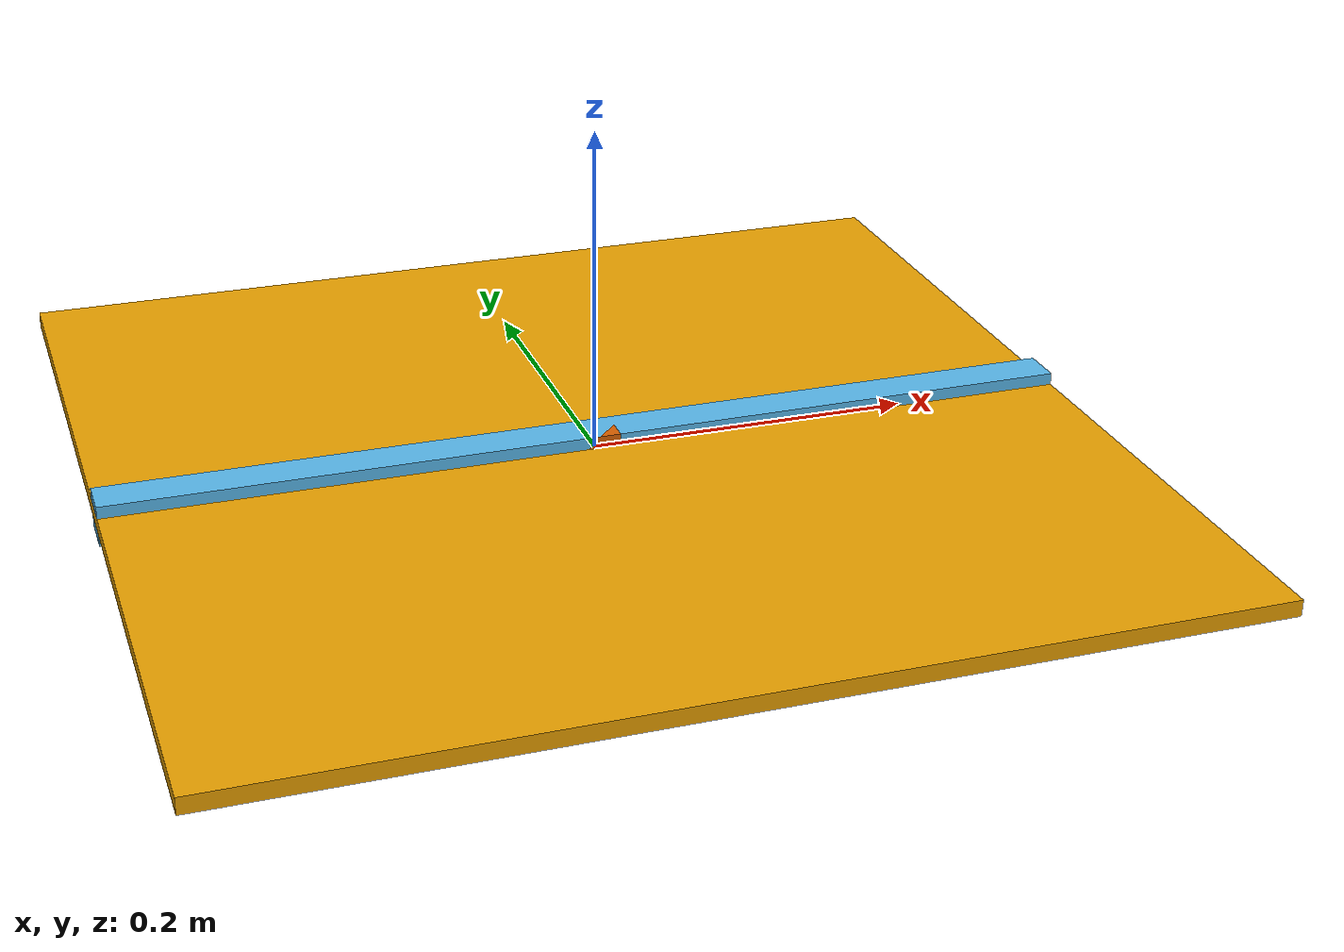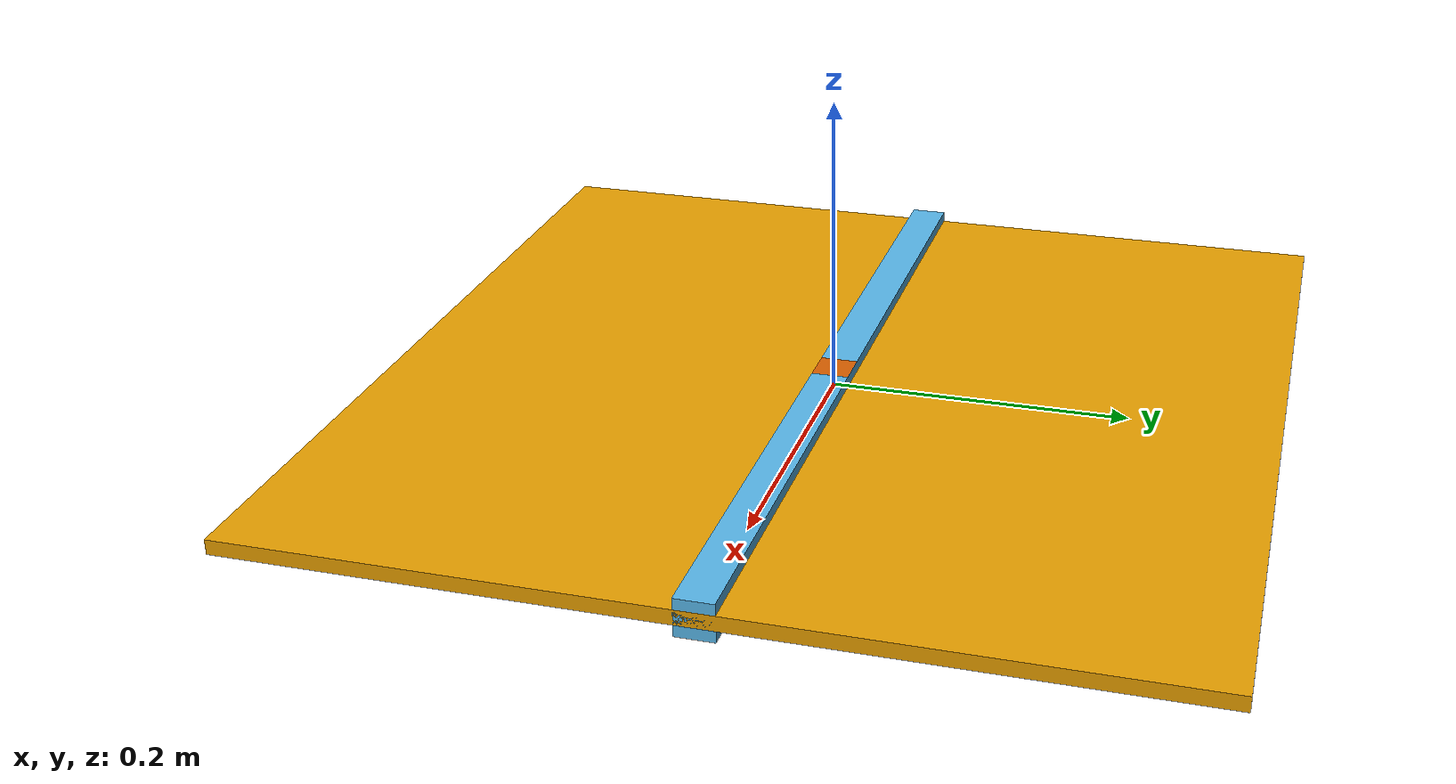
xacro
<?xml version="1.0"?>
<robot xmlns:xacro="http://www.ros.org/wiki/xacro" name="nu_urc_rover">

  <xacro:property name="robot_name" value="nu_urc_rover" />
  <xacro:property name="robot_base_width" value="0.6" />
  <xacro:property name="robot_base_length" value="0.6" />
  <xacro:property name="sheet_metal_thickness" value="0.01" />

  <!-- Cross sectional length of the aluminum bar -->
  <xacro:property name="aluminum_cs_length" value="0.025" />
  <xacro:property name="cube_length" value="0.025" />
  <xacro:property name="aluminum_bar_length" value="0.6" />

  <!--                              BEGIN MACRO DEFINITION                              -->

  <!-- Perforated sheet metal -->
  <xacro:macro name="sheet_metal" params="name width length depth">
    <link name="${name}">
      <visual>
        <geometry>
          <box size="${width} ${length} ${depth}" />
          <origin rpy="0.0 0.0 0.0" xyz="0.0 0.0 0.0" />
        </geometry>
      </visual>
    </link>
  </xacro:macro>

  <!-- Extruded aluminum link with variable size -->
  <xacro:macro name="ext_aluminum" params="name bar_length cs_length">
    <link name="${name}_chassis">
      <visual>
        <geometry>
          <box size="${bar_length} ${cs_length} ${cs_length}" />
        </geometry>
        <origin rpy="0.0 0.0 0.0" xyz="0.0 0.0 0.0" />
      </visual>
    </link>
  </xacro:macro>

  <!-- Cube connection pieces between extruded aluminum links -->
  <xacro:macro name="cube_connector" params="name length">
    <link name="${name}">
      <visual>
        <geometry>
          <box size="${length} ${length} ${length}" />
        </geometry>
        <origin rpy="0.0 0.0 0.0" xyz="0.0 0.0 0.0" />
      </visual>
    </link>
  </xacro:macro>

  <!-- Chassis joint generation macro -->
  <xacro:macro name="chassis_generation" params="parent_base child_base">
    <joint name="${parent_base}_${child_base}_connector" type="continuous">
      <parent link="${parent_base}" />
      <child link="${child_base}" />
    </joint>
  </xacro:macro>

  <!--                              END MACRO DEFINITION                              -->
  <!--                              BEGIN LINK DEFINITION                              -->

  <!-- Generate the base link -->
  <xacro:sheet_metal name="base_link" width="${robot_base_width}" length="${robot_base_length}" depth="${sheet_metal_thickness}" />

  <!-- Generate all the extruded aluminum links that are easily modeled -->
  <xacro:ext_aluminum name="bf" bar_length="${aluminum_bar_length}" cs_length="${aluminum_cs_length}" />
  <xacro:ext_aluminum name="bb" bar_length="${aluminum_bar_length}" cs_length="${aluminum_cs_length}" />
  <xacro:ext_aluminum name="bl" bar_length="${aluminum_bar_length}" cs_length="${aluminum_cs_length}" />
  <xacro:ext_aluminum name="br" bar_length="${aluminum_bar_length}" cs_length="${aluminum_cs_length}" />
  <xacro:ext_aluminum name="tf" bar_length="${aluminum_bar_length}" cs_length="${aluminum_cs_length}" />
  <xacro:ext_aluminum name="tb" bar_length="${aluminum_bar_length}" cs_length="${aluminum_cs_length}" />
  <xacro:ext_aluminum name="tl" bar_length="${aluminum_bar_length}" cs_length="${aluminum_cs_length}" />
  <xacro:ext_aluminum name="tr" bar_length="${aluminum_bar_length}" cs_length="${aluminum_cs_length}" />
  <xacro:ext_aluminum name="bt_bl" bar_length="${aluminum_bar_length}" cs_length="${aluminum_cs_length}" />
  <xacro:ext_aluminum name="bt_br" bar_length="${aluminum_bar_length}" cs_length="${aluminum_cs_length}" />
  <xacro:ext_aluminum name="bt_fl" bar_length="${aluminum_bar_length}" cs_length="${aluminum_cs_length}" />
  <xacro:ext_aluminum name="bt_fr" bar_length="${aluminum_bar_length}" cs_length="${aluminum_cs_length}" />

  <!-- Generate all the cube connection pieces -->
  <xacro:cube_connector name="tfl_cube_chassis" length="${cube_length}" />
  <xacro:cube_connector name="tfr_cube_chassis" length="${cube_length}" />
  <xacro:cube_connector name="tbl_cube_chassis" length="${cube_length}" />
  <xacro:cube_connector name="tbr_cube_chassis" length="${cube_length}" />
  <xacro:cube_connector name="bfl_cube_chassis" length="${cube_length}" />
  <xacro:cube_connector name="bfr_cube_chassis" length="${cube_length}" />
  <xacro:cube_connector name="bbl_cube_chassis" length="${cube_length}" />
  <xacro:cube_connector name="bbr_cube_chassis" length="${cube_length}" />

  <!--                               END LINK DEFINITION                              -->
  <!--                              BEGIN JOINT DEFINITION                              -->

  <!-- Base link bottom connections -->
  <xacro:chassis_generation parent_base="base_link" child_base="bf_chassis" />
  <xacro:chassis_generation parent_base="base_link" child_base="bb_chassis" />
  <xacro:chassis_generation parent_base="base_link" child_base="bl_chassis" />
  <xacro:chassis_generation parent_base="base_link" child_base="br_chassis" />
  <xacro:chassis_generation parent_base="base_link" child_base="bfl_cube_chassis" />
  <xacro:chassis_generation parent_base="base_link" child_base="bfr_cube_chassis" />
  <xacro:chassis_generation parent_base="base_link" child_base="bbl_cube_chassis" />
  <xacro:chassis_generation parent_base="base_link" child_base="bbr_cube_chassis" />

  <!-- Bottom cube to top link connections -->
  <xacro:chassis_generation parent_base="bfl_cube_chassis" child_base="bt_fl_chassis" />
  <xacro:chassis_generation parent_base="bfr_cube_chassis" child_base="bt_fr_chassis" />
  <xacro:chassis_generation parent_base="bbl_cube_chassis" child_base="bt_bl_chassis" />
  <xacro:chassis_generation parent_base="bbr_cube_chassis" child_base="bt_br_chassis" />

  <!-- Top link to top cube connections -->
  <xacro:chassis_generation parent_base="bt_fl_chassis" child_base="tfl_cube_chassis" />
  <xacro:chassis_generation parent_base="bt_fr_chassis" child_base="tfr_cube_chassis" />
  <xacro:chassis_generation parent_base="bt_bl_chassis" child_base="tbl_cube_chassis" />
  <xacro:chassis_generation parent_base="bt_br_chassis" child_base="tbr_cube_chassis" />

  <!-- Top branching cube connections to links -->
  <xacro:chassis_generation parent_base="tfr_cube_chassis" child_base="tf_chassis" />
  <xacro:chassis_generation parent_base="tfr_cube_chassis" child_base="tr_chassis" />
  <xacro:chassis_generation parent_base="tbl_cube_chassis" child_base="tb_chassis" />
  <xacro:chassis_generation parent_base="tbl_cube_chassis" child_base="tl_chassis" />

  <!--                               END JOINT DEFINITION                              -->

</robot>
